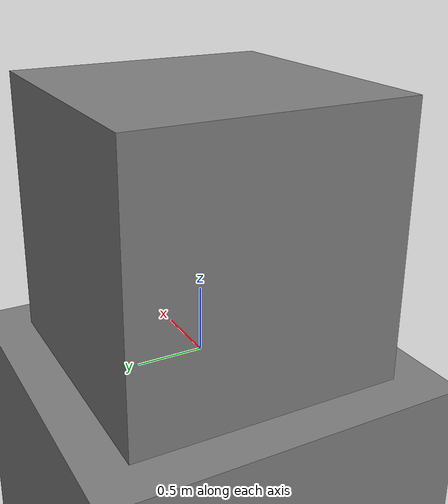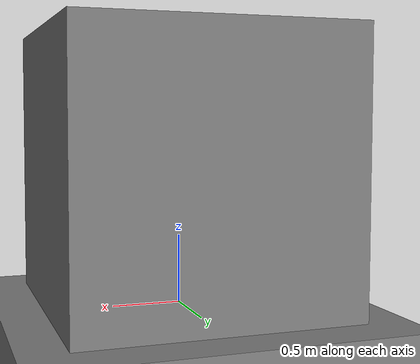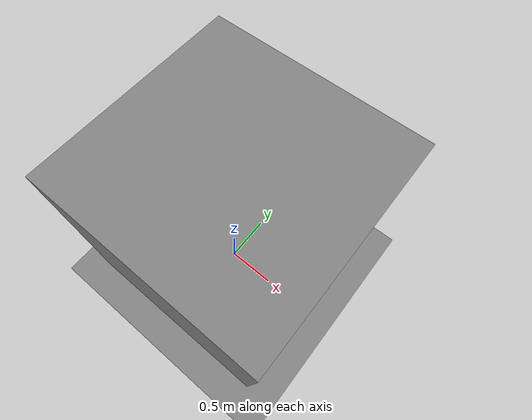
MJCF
<mujoco model="Box mesh with multiccd">
  <option>
    <flag multiccd="enable"/>
  </option>

  <asset>
    <mesh name="box"
          vertex="-1 -1 -1
                   1 -1 -1
                   1  1 -1
                   1  1  1
                   1 -1  1
                  -1  1 -1
                  -1  1  1
                  -1 -1  1"/>
  </asset>

  <worldbody>
    <geom pos="0 0 -1" type="box" size="5 5 1"/>
    <body pos="0 0 0.9999">
      <freejoint/>
      <geom type="mesh" mesh="box"/>
    </body>
  </worldbody>
</mujoco>
